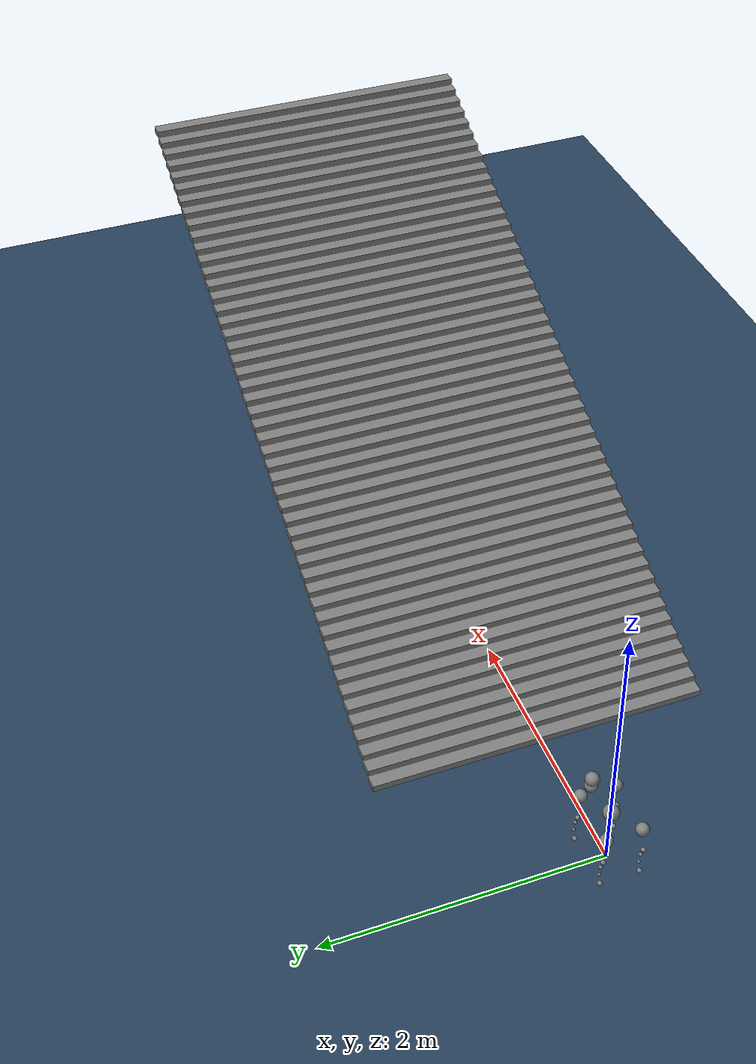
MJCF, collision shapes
<mujoco model="go2 scene">
  <include file="go2_mjx.xml" />

  <statistic center="0 0 0.1" extent="0.8" />

  <visual>
    <headlight diffuse="0.6 0.6 0.6" ambient="0.3 0.3 0.3" specular="0 0 0" />
    <rgba haze="0.15 0.25 0.35 1" />
    <global azimuth="-130" elevation="-20" />
  </visual>

  <asset>
    <texture type="skybox" builtin="gradient" rgb1="0.3 0.5 0.7" rgb2="0 0 0" width="512" height="3072" />
    <texture type="2d" name="groundplane" builtin="checker" mark="edge" rgb1="0.2 0.3 0.4" rgb2="0.1 0.2 0.3" markrgb="0.8 0.8 0.8" width="300" height="300" />
    <material name="groundplane" texture="groundplane" texuniform="true" texrepeat="5 5" reflectance="0.2" />
  </asset>

  <worldbody>
    <light pos="0 0 1.5" dir="0 0 -1" directional="true" />
    <geom name="floor" size="0 0 0.05" type="plane" material="groundplane" />
  <geom pos="1.1 0.0 0.025" type="box" size="0.05 1.25 0.025" quat="1.0 0.0 0.0 0.0" /><geom pos="1.2 0.0 0.07500000000000001" type="box" size="0.05 1.25 0.025" quat="1.0 0.0 0.0 0.0" /><geom pos="1.3 0.0 0.125" type="box" size="0.05 1.25 0.025" quat="1.0 0.0 0.0 0.0" /><geom pos="1.4 0.0 0.175" type="box" size="0.05 1.25 0.025" quat="1.0 0.0 0.0 0.0" /><geom pos="1.5 0.0 0.22499999999999998" type="box" size="0.05 1.25 0.025" quat="1.0 0.0 0.0 0.0" /><geom pos="1.6 0.0 0.27499999999999997" type="box" size="0.05 1.25 0.025" quat="1.0 0.0 0.0 0.0" /><geom pos="1.7 0.0 0.32499999999999996" type="box" size="0.05 1.25 0.025" quat="1.0 0.0 0.0 0.0" /><geom pos="1.7999999999999998 0.0 0.37499999999999994" type="box" size="0.05 1.25 0.025" quat="1.0 0.0 0.0 0.0" /><geom pos="1.9 0.0 0.42499999999999993" type="box" size="0.05 1.25 0.025" quat="1.0 0.0 0.0 0.0" /><geom pos="2.0 0.0 0.4749999999999999" type="box" size="0.05 1.25 0.025" quat="1.0 0.0 0.0 0.0" /><geom pos="2.0999999999999996 0.0 0.5249999999999999" type="box" size="0.05 1.25 0.025" quat="1.0 0.0 0.0 0.0" /><geom pos="2.2 0.0 0.575" type="box" size="0.05 1.25 0.025" quat="1.0 0.0 0.0 0.0" /><geom pos="2.3 0.0 0.625" type="box" size="0.05 1.25 0.025" quat="1.0 0.0 0.0 0.0" /><geom pos="2.4000000000000004 0.0 0.675" type="box" size="0.05 1.25 0.025" quat="1.0 0.0 0.0 0.0" /><geom pos="2.5 0.0 0.7250000000000001" type="box" size="0.05 1.25 0.025" quat="1.0 0.0 0.0 0.0" /><geom pos="2.6000000000000005 0.0 0.7750000000000001" type="box" size="0.05 1.25 0.025" quat="1.0 0.0 0.0 0.0" /><geom pos="2.7 0.0 0.8250000000000002" type="box" size="0.05 1.25 0.025" quat="1.0 0.0 0.0 0.0" /><geom pos="2.8000000000000007 0.0 0.8750000000000002" type="box" size="0.05 1.25 0.025" quat="1.0 0.0 0.0 0.0" /><geom pos="2.9000000000000004 0.0 0.9250000000000003" type="box" size="0.05 1.25 0.025" quat="1.0 0.0 0.0 0.0" /><geom pos="3.0000000000000004 0.0 0.9750000000000003" type="box" size="0.05 1.25 0.025" quat="1.0 0.0 0.0 0.0" /><geom pos="3.1000000000000005 0.0 1.0250000000000004" type="box" size="0.05 1.25 0.025" quat="1.0 0.0 0.0 0.0" /><geom pos="3.2000000000000006 0.0 1.0750000000000004" type="box" size="0.05 1.25 0.025" quat="1.0 0.0 0.0 0.0" /><geom pos="3.3000000000000007 0.0 1.1250000000000004" type="box" size="0.05 1.25 0.025" quat="1.0 0.0 0.0 0.0" /><geom pos="3.400000000000001 0.0 1.1750000000000005" type="box" size="0.05 1.25 0.025" quat="1.0 0.0 0.0 0.0" /><geom pos="3.500000000000001 0.0 1.2250000000000005" type="box" size="0.05 1.25 0.025" quat="1.0 0.0 0.0 0.0" /><geom pos="3.600000000000001 0.0 1.2750000000000006" type="box" size="0.05 1.25 0.025" quat="1.0 0.0 0.0 0.0" /><geom pos="3.700000000000001 0.0 1.3250000000000006" type="box" size="0.05 1.25 0.025" quat="1.0 0.0 0.0 0.0" /><geom pos="3.800000000000001 0.0 1.3750000000000007" type="box" size="0.05 1.25 0.025" quat="1.0 0.0 0.0 0.0" /><geom pos="3.9000000000000012 0.0 1.4250000000000007" type="box" size="0.05 1.25 0.025" quat="1.0 0.0 0.0 0.0" /><geom pos="4.000000000000002 0.0 1.4750000000000008" type="box" size="0.05 1.25 0.025" quat="1.0 0.0 0.0 0.0" /><geom pos="4.100000000000001 0.0 1.5250000000000008" type="box" size="0.05 1.25 0.025" quat="1.0 0.0 0.0 0.0" /><geom pos="4.200000000000001 0.0 1.5750000000000008" type="box" size="0.05 1.25 0.025" quat="1.0 0.0 0.0 0.0" /><geom pos="4.300000000000002 0.0 1.6250000000000009" type="box" size="0.05 1.25 0.025" quat="1.0 0.0 0.0 0.0" /><geom pos="4.400000000000002 0.0 1.675000000000001" type="box" size="0.05 1.25 0.025" quat="1.0 0.0 0.0 0.0" /><geom pos="4.500000000000002 0.0 1.725000000000001" type="box" size="0.05 1.25 0.025" quat="1.0 0.0 0.0 0.0" /><geom pos="4.600000000000001 0.0 1.775000000000001" type="box" size="0.05 1.25 0.025" quat="1.0 0.0 0.0 0.0" /><geom pos="4.700000000000002 0.0 1.825000000000001" type="box" size="0.05 1.25 0.025" quat="1.0 0.0 0.0 0.0" /><geom pos="4.8000000000000025 0.0 1.875000000000001" type="box" size="0.05 1.25 0.025" quat="1.0 0.0 0.0 0.0" /><geom pos="4.900000000000002 0.0 1.9250000000000012" type="box" size="0.05 1.25 0.025" quat="1.0 0.0 0.0 0.0" /><geom pos="5.000000000000002 0.0 1.9750000000000012" type="box" size="0.05 1.25 0.025" quat="1.0 0.0 0.0 0.0" /><geom pos="5.100000000000001 0.0 2.0250000000000012" type="box" size="0.05 1.25 0.025" quat="1.0 0.0 0.0 0.0" /><geom pos="5.200000000000001 0.0 2.075000000000001" type="box" size="0.05 1.25 0.025" quat="1.0 0.0 0.0 0.0" /><geom pos="5.300000000000001 0.0 2.125000000000001" type="box" size="0.05 1.25 0.025" quat="1.0 0.0 0.0 0.0" /><geom pos="5.4 0.0 2.1750000000000007" type="box" size="0.05 1.25 0.025" quat="1.0 0.0 0.0 0.0" /><geom pos="5.5 0.0 2.2250000000000005" type="box" size="0.05 1.25 0.025" quat="1.0 0.0 0.0 0.0" /><geom pos="5.6 0.0 2.2750000000000004" type="box" size="0.05 1.25 0.025" quat="1.0 0.0 0.0 0.0" /><geom pos="5.699999999999999 0.0 2.325" type="box" size="0.05 1.25 0.025" quat="1.0 0.0 0.0 0.0" /><geom pos="5.799999999999999 0.0 2.375" type="box" size="0.05 1.25 0.025" quat="1.0 0.0 0.0 0.0" /><geom pos="5.899999999999999 0.0 2.425" type="box" size="0.05 1.25 0.025" quat="1.0 0.0 0.0 0.0" /><geom pos="5.999999999999998 0.0 2.4749999999999996" type="box" size="0.05 1.25 0.025" quat="1.0 0.0 0.0 0.0" /></worldbody>
</mujoco>

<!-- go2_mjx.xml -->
<mujoco model="go2">
  <compiler angle="radian" meshdir="assets" autolimits="true"/>

  <option cone="pyramidal" impratio="100" iterations="50" ls_iterations="10">
    <flag eulerdamp="disable"/>
  </option>

  <default>
    <default class="go2">
      <geom friction="0.6" margin="0.001" condim="3"/>
      <joint axis="0 1 0" damping="2" armature="0.01"
             solreflimit="0.004 1" solimplimit="0.98 0.9999 0.0005 0.5 2"/>
      <!-- Unitree Go2 datasheet limits. ctrlrange bounds the command;
           forcerange bounds the force MuJoCo actually applies. -->
      <motor ctrlrange="-23.7 23.7" forcerange="-23.7 23.7"/>

      <default class="abduction">
        <joint axis="1 0 0" range="-1.0472 1.0472"/>
      </default>
      <default class="hip">
        <joint range="-1.5708 3.4907"/>
      </default>
      <default class="knee">
        <joint range="-2.7227 -0.83776"/>
        <motor ctrlrange="-45.43 45.43" forcerange="-45.43 45.43"/>
      </default>
      <default class="visual">
        <geom type="mesh" contype="0" conaffinity="0" group="2"/>
      </default>
      <default class="go2foot">
        <site group="1" pos="-0.002 0 -0.213"/>
        <geom rgba="0.231373 0.380392 0.705882 1"/>
      </default>
      <default class="collision">
        <geom group="3"/>
        <default class="foot">
          <geom size="0.0175" pos="-0.002 0 -0.213" priority="1" solref="0.01 1" solimp="0.9 0.95 0.001" condim="6"
            friction="1.2 0.02 0.01"/>
        </default>
      </default>
    </default>
  </default>

  <asset>
    <material name="metal" rgba=".9 .95 .95 1"/>
    <material name="black" rgba="0 0 0 1"/>
    <material name="white" rgba="1 1 1 1"/>
    <material name="gray" rgba="0.671705 0.692426 0.774270 1"/>

    <mesh file="base_0.obj"/>
    <mesh file="base_1.obj"/>
    <mesh file="base_2.obj"/>
    <mesh file="base_3.obj"/>
    <mesh file="base_4.obj"/>
    <mesh file="hip_0.obj"/>
    <mesh file="hip_1.obj"/>
    <mesh file="thigh_0.obj"/>
    <mesh file="thigh_1.obj"/>
    <mesh file="thigh_mirror_0.obj"/>
    <mesh file="thigh_mirror_1.obj"/>
    <mesh file="calf_0.obj"/>
    <mesh file="calf_1.obj"/>
    <mesh file="calf_mirror_0.obj"/>
    <mesh file="calf_mirror_1.obj"/>
    <mesh file="foot.obj"/>
  </asset>

  <worldbody>
    <body name="base" pos="0 0 0.445" childclass="go2">
      <camera name="track" pos="0.846 -1.465 0.916" xyaxes="0.866 0.500 0.000 -0.171 0.296 0.940" mode="trackcom"/>
      <inertial pos="0.021112 0 -0.005366" quat="-0.000543471 0.713435 -0.00173769 0.700719" mass="6.921"
        diaginertia="0.107027 0.0980771 0.0244531"/>
      <freejoint/>
      <geom mesh="base_0" material="black" class="visual"/>
      <geom mesh="base_1" material="black" class="visual"/>
      <geom mesh="base_2" material="black" class="visual"/>
      <geom mesh="base_3" material="white" class="visual"/>
      <geom mesh="base_4" material="gray" class="visual"/>
      <geom size="0.057 0.04675 0.057" class="collision"/>
      <geom size="0.05 0.045" pos="0.285 0 0.01" class="collision"/>
      <geom size="0.047" pos="0.293 0 -0.06" class="collision"/>
      <site name="imu" pos="-0.02557 0 0.04232"/>
      <body name="FL_hip" pos="0.1934 0.0465 0">
        <inertial pos="-0.0054 0.00194 -0.000105" quat="0.497014 0.499245 0.505462 0.498237" mass="0.678"
          diaginertia="0.00088403 0.000596003 0.000479967"/>
        <joint name="FL_hip_joint" class="abduction"/>
        <geom mesh="hip_0" material="metal" class="visual"/>
        <geom mesh="hip_1" material="gray" class="visual"/>
        <geom size="0.046 0.02" pos="0 0.08 0" quat="1 1 0 0" class="collision"/>
        <body name="FL_thigh" pos="0 0.0955 0">
          <inertial pos="-0.00374 -0.0223 -0.0327" quat="0.829533 0.0847635 -0.0200632 0.551623" mass="1.152"
            diaginertia="0.00594973 0.00584149 0.000878787"/>
          <joint name="FL_thigh_joint" class="hip"/>
          <geom mesh="thigh_0" material="metal" class="visual"/>
          <geom mesh="thigh_1" material="gray" class="visual"/>
          <geom size="0.017 0.01225 0.017" pos="-0.015 0 -0.1955" quat="0.707107 0 0.707107 0" class="collision"/>
          <body name="FL_calf" pos="0 0 -0.213">
            <inertial pos="0.00629595 -0.000622121 -0.141417" quat="0.710672 0.00154099 -0.00450087 0.703508"
              mass="0.241352" diaginertia="0.0014901 0.00146356 5.31397e-05"/>
            <joint name="FL_calf_joint" class="knee"/>
            <geom mesh="calf_0" material="gray" class="visual"/>
            <geom mesh="calf_1" material="black" class="visual"/>
            <geom size="0.012 0.06" pos="0.008 0 -0.06" quat="0.994493 0 -0.104807 0" class="collision"/>
            <geom size="0.011 0.0325" pos="0.02 0 -0.148" quat="0.999688 0 0.0249974 0" class="collision"/>
            <geom pos="0 0 -0.213" mesh="foot" class="visual" material="black"/>
            <geom name="FL" class="foot"/>
            <site name="FL_foot" class="go2foot"/>
          </body>
        </body>
      </body>
      <body name="FR_hip" pos="0.1934 -0.0465 0">
        <inertial pos="-0.0054 -0.00194 -0.000105" quat="0.498237 0.505462 0.499245 0.497014" mass="0.678"
          diaginertia="0.00088403 0.000596003 0.000479967"/>
        <joint name="FR_hip_joint" class="abduction"/>
        <geom mesh="hip_0" material="metal" class="visual" quat="4.63268e-05 1 0 0"/>
        <geom mesh="hip_1" material="gray" class="visual" quat="4.63268e-05 1 0 0"/>
        <geom size="0.046 0.02" pos="0 -0.08 0" quat="0.707107 0.707107 0 0" class="collision"/>
        <body name="FR_thigh" pos="0 -0.0955 0">
          <inertial pos="-0.00374 0.0223 -0.0327" quat="0.551623 -0.0200632 0.0847635 0.829533" mass="1.152"
            diaginertia="0.00594973 0.00584149 0.000878787"/>
          <joint name="FR_thigh_joint" class="hip"/>
          <geom mesh="thigh_mirror_0" material="metal" class="visual"/>
          <geom mesh="thigh_mirror_1" material="gray" class="visual"/>
          <geom size="0.017 0.01225 0.017" pos="-0.015 0 -0.1955" quat="0.707107 0 0.707107 0" class="collision"/>
          <body name="FR_calf" pos="0 0 -0.213">
            <inertial pos="0.00629595 0.000622121 -0.141417" quat="0.703508 -0.00450087 0.00154099 0.710672"
              mass="0.241352" diaginertia="0.0014901 0.00146356 5.31397e-05"/>
            <joint name="FR_calf_joint" class="knee"/>
            <geom mesh="calf_mirror_0" material="gray" class="visual"/>
            <geom mesh="calf_mirror_1" material="black" class="visual"/>
            <geom size="0.013 0.06" pos="0.01 0 -0.06" quat="0.995004 0 -0.0998334 0" class="collision"/>
            <geom size="0.011 0.0325" pos="0.02 0 -0.148" quat="0.999688 0 0.0249974 0" class="collision"/>
            <geom pos="0 0 -0.213" mesh="foot" class="visual" material="black"/>
            <geom name="FR" class="foot"/>
            <site name="FR_foot" class="go2foot"/>
          </body>
        </body>
      </body>
      <body name="RL_hip" pos="-0.1934 0.0465 0">
        <inertial pos="0.0054 0.00194 -0.000105" quat="0.505462 0.498237 0.497014 0.499245" mass="0.678"
          diaginertia="0.00088403 0.000596003 0.000479967"/>
        <joint name="RL_hip_joint" class="abduction"/>
        <geom mesh="hip_0" material="metal" class="visual" quat="4.63268e-05 0 1 0"/>
        <geom mesh="hip_1" material="gray" class="visual" quat="4.63268e-05 0 1 0"/>
        <geom size="0.046 0.02" pos="0 0.08 0" quat="0.707107 0.707107 0 0" class="collision"/>
        <body name="RL_thigh" pos="0 0.0955 0">
          <inertial pos="-0.00374 -0.0223 -0.0327" quat="0.829533 0.0847635 -0.0200632 0.551623" mass="1.152"
            diaginertia="0.00594973 0.00584149 0.000878787"/>
          <joint name="RL_thigh_joint" class="hip"/>
          <geom mesh="thigh_0" material="metal" class="visual"/>
          <geom mesh="thigh_1" material="gray" class="visual"/>
          <geom size="0.017 0.01225 0.017" pos="-0.015 0 -0.1955" quat="0.707107 0 0.707107 0" class="collision"/>
          <body name="RL_calf" pos="0 0 -0.213">
            <inertial pos="0.00629595 -0.000622121 -0.141417" quat="0.710672 0.00154099 -0.00450087 0.703508"
              mass="0.241352" diaginertia="0.0014901 0.00146356 5.31397e-05"/>
            <joint name="RL_calf_joint" class="knee"/>
            <geom mesh="calf_0" material="gray" class="visual"/>
            <geom mesh="calf_1" material="black" class="visual"/>
            <geom size="0.013 0.06" pos="0.01 0 -0.06" quat="0.995004 0 -0.0998334 0" class="collision"/>
            <geom size="0.011 0.0325" pos="0.02 0 -0.148" quat="0.999688 0 0.0249974 0" class="collision"/>
            <geom pos="0 0 -0.213" mesh="foot" class="visual" material="black"/>
            <geom name="RL" class="foot"/>
            <site name="RL_foot" class="go2foot"/>
          </body>
        </body>
      </body>
      <body name="RR_hip" pos="-0.1934 -0.0465 0">
        <inertial pos="0.0054 -0.00194 -0.000105" quat="0.499245 0.497014 0.498237 0.505462" mass="0.678"
          diaginertia="0.00088403 0.000596003 0.000479967"/>
        <joint name="RR_hip_joint" class="abduction"/>
        <geom mesh="hip_0" material="metal" class="visual" quat="2.14617e-09 4.63268e-05 4.63268e-05 -1"/>
        <geom mesh="hip_1" material="gray" class="visual" quat="2.14617e-09 4.63268e-05 4.63268e-05 -1"/>
        <geom size="0.046 0.02" pos="0 -0.08 0" quat="0.707107 0.707107 0 0" class="collision"/>
        <body name="RR_thigh" pos="0 -0.0955 0">
          <inertial pos="-0.00374 0.0223 -0.0327" quat="0.551623 -0.0200632 0.0847635 0.829533" mass="1.152"
            diaginertia="0.00594973 0.00584149 0.000878787"/>
          <joint name="RR_thigh_joint" class="hip"/>
          <geom mesh="thigh_mirror_0" material="metal" class="visual"/>
          <geom mesh="thigh_mirror_1" material="gray" class="visual"/>
          <geom size="0.017 0.01225 0.017" pos="-0.015 0 -0.1955" quat="0.707107 0 0.707107 0" class="collision"/>
          <body name="RR_calf" pos="0 0 -0.213">
            <inertial pos="0.00629595 0.000622121 -0.141417" quat="0.703508 -0.00450087 0.00154099 0.710672"
              mass="0.241352" diaginertia="0.0014901 0.00146356 5.31397e-05"/>
            <joint name="RR_calf_joint" class="knee"/>
            <geom mesh="calf_mirror_0" material="gray" class="visual"/>
            <geom mesh="calf_mirror_1" material="black" class="visual"/>
            <geom size="0.013 0.06" pos="0.01 0 -0.06" quat="0.995004 0 -0.0998334 0" class="collision"/>
            <geom size="0.011 0.0325" pos="0.02 0 -0.148" quat="0.999688 0 0.0249974 0" class="collision"/>
            <geom pos="0 0 -0.213" mesh="foot" class="visual" material="black"/>
            <geom name="RR" class="foot"/>
            <site name="RR_foot" class="go2foot"/>
          </body>
        </body>
      </body>
    </body>
  </worldbody>

  <actuator>
    <motor class="abduction" name="FL_hip" joint="FL_hip_joint"/>
    <motor class="hip" name="FL_thigh" joint="FL_thigh_joint"/>
    <motor class="knee" name="FL_calf" joint="FL_calf_joint"/>
    <motor class="abduction" name="FR_hip" joint="FR_hip_joint"/>
    <motor class="hip" name="FR_thigh" joint="FR_thigh_joint"/>
    <motor class="knee" name="FR_calf" joint="FR_calf_joint"/>
    <motor class="abduction" name="RL_hip" joint="RL_hip_joint"/>
    <motor class="hip" name="RL_thigh" joint="RL_thigh_joint"/>
    <motor class="knee" name="RL_calf" joint="RL_calf_joint"/>
    <motor class="abduction" name="RR_hip" joint="RR_hip_joint"/>
    <motor class="hip" name="RR_thigh" joint="RR_thigh_joint"/>
    <motor class="knee" name="RR_calf" joint="RR_calf_joint"/>
  </actuator>

  <sensor>
    <jointpos joint="FL_hip_joint" name="abduction_front_left_pos"/>
    <jointpos joint="FL_thigh_joint" name="hip_front_left_pos"/>
    <jointpos joint="FL_calf_joint" name="knee_front_left_pos"/>
    <jointpos joint="RL_hip_joint" name="abduction_hind_left_pos"/>
    <jointpos joint="RL_thigh_joint" name="hip_hind_left_pos"/>
    <jointpos joint="RL_calf_joint" name="knee_hind_left_pos"/>
    <jointpos joint="FR_hip_joint" name="abduction_front_right_pos"/>
    <jointpos joint="FR_thigh_joint" name="hip_front_right_pos"/>
    <jointpos joint="FR_calf_joint" name="knee_front_right_pos"/>
    <jointpos joint="RR_hip_joint" name="abduction_hind_right_pos"/>
    <jointpos joint="RR_thigh_joint" name="hip_hind_right_pos"/>
    <jointpos joint="RR_calf_joint" name="knee_hind_right_pos"/>
    <jointvel joint="FL_hip_joint" name="abduction_front_left_vel"/>
    <jointvel joint="FL_thigh_joint" name="hip_front_left_vel"/>
    <jointvel joint="FL_calf_joint" name="knee_front_left_vel"/>
    <jointvel joint="RL_hip_joint" name="abduction_hind_left_vel"/>
    <jointvel joint="RL_thigh_joint" name="hip_hind_left_vel"/>
    <jointvel joint="RL_calf_joint" name="knee_hind_left_vel"/>
    <jointvel joint="FR_hip_joint" name="abduction_front_right_vel"/>
    <jointvel joint="FR_thigh_joint" name="hip_front_right_vel"/>
    <jointvel joint="FR_calf_joint" name="knee_front_right_vel"/>
    <jointvel joint="RR_hip_joint" name="abduction_hind_right_vel"/>
    <jointvel joint="RR_thigh_joint" name="hip_hind_right_vel"/>
    <jointvel joint="RR_calf_joint" name="knee_hind_right_vel"/>
    <gyro site="imu" name="gyro"/>
    <accelerometer site="imu" name="accelerometer"/>
    <framequat objtype="site" objname="imu" name="orientation"/>
    <framepos objtype="site" objname="imu" name="global_position"/>
    <framelinvel objtype="site" objname="imu" name="global_linvel"/>
    <frameangvel objtype="site" objname="imu" name="global_angvel"/>
  </sensor>

</mujoco>
